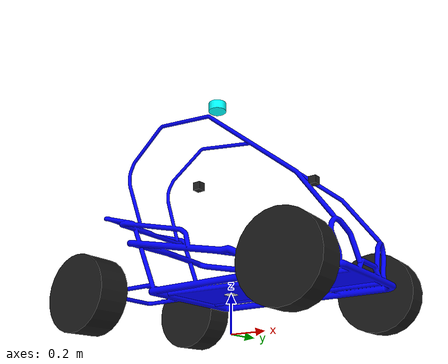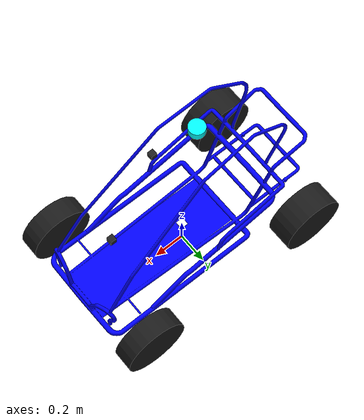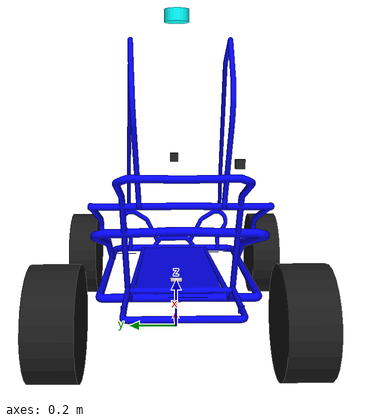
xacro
<?xml version="1.0"?>

<robot name="my_robot" xmlns:xacro="http://www.ros.org/wiki/xacro">

  <xacro:include filename="new_car.xacro" />

  <xacro:include filename="ros2_control_ackerman.xacro" />

  <xacro:include filename="lidar.xacro" />

  <xacro:include filename="cameras.xacro" />

  <xacro:include filename="gazebo_control.xacro" />

</robot>

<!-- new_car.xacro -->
<robot name="ackermann_drive" xmlns:xacro="http://ros.org/wiki/xacro">

    <xacro:property name="base_width" value="1.041"/>
    <xacro:property name="base_length" value="1.892"/>
    <xacro:property name="base_height" value="0.626"/>

    <xacro:property name="front_wheel_radius" value="0.2"/>
    <xacro:property name="front_wheel_width" value="0.13"/>
    <xacro:property name="rear_wheel_radius" value="0.2"/>
    <xacro:property name="rear_wheel_width" value="0.17"/>

    <xacro:include filename="inertia_macros.xacro"/>

    <!-- Colors -->
    <material name="White">
        <color rgba="1.0 1.0 1.0 1.0"/>
    </material>
    <material name="Blue">
        <color rgba="0.0 0.0 1.0 1.0"/>
    </material>
    <material name="Gray">
        <color rgba="0.5 0.5 0.5 1.0"/>
    </material>
    <material name="Black">
        <color rgba="0.1 0.1 0.1 1"/>
    </material>
    <material name="Cyan">
        <color rgba="0 1.0 1.0 1.0"/>
    </material>
    <material name="Red">
        <color rgba="1 0 0 1.0"/>
    </material>

    <link name="base_link" />

    <!-- Chassis -->
    <link name="chassis">

        <visual>
        <origin xyz="0 -0.01 0" rpy="0 0 0" />
            <geometry>
                <mesh filename="package://robot_description/description/meshes/new_car_chassis.stl" scale="0.58 0.5 0.58"/>
            </geometry>
            <material name="Blue"/>
        </visual>

        <collision>
        </collision>
        <!-- make box slightly smaller than actual to prevent accidental self collision y=0.92-->
        <xacro:inertia_box mass="150" x="1.65" y="0.92" z="1.13">
            <origin rpy="0 -0.01 0" xyz="0 0 0"/>
        </xacro:inertia_box>
    </link>

    <joint name="chassis_joint" type="fixed">
        <origin xyz="0 0 0.2" rpy="0 0 0" />
        <parent link="base_link" />
        <child link="chassis" />
    </joint>

    <!-- rear left wheel Link -->
    <link name="rear_left_wheel">
        <visual>
            <geometry>
                <cylinder radius="${rear_wheel_radius}" length="${rear_wheel_width}"/>
            </geometry>
            <material name="Black"/>
        </visual>
        <collision>
            <geometry>
                <cylinder radius="${rear_wheel_radius}" length="${rear_wheel_width}"/>
            </geometry>
        </collision>
        <xacro:inertia_cylinder mass="6.8" length="0.17" radius="0.2">
            <origin xyz="-0.6 0.42 0" rpy="-1.57 0 0"/>
        </xacro:inertia_cylinder>
    </link>

    <joint name="rear_left_wheel_joint" type="continuous">
        <origin xyz="-0.6 0.42 0" rpy="-1.57 0 0"/>
        <parent link="chassis" />
        <child link="rear_left_wheel" />
        <axis xyz="0 0 1" />
        <dynamics damping="0.2" />
    </joint>

    <!-- rear right wheel Link -->
    <link name="rear_right_wheel">
        <visual>
            <geometry>
                <cylinder radius="${rear_wheel_radius}" length="${rear_wheel_width}"/>
            </geometry>
            <material name="Black"/>
        </visual>
        <collision>
            <geometry>
                <cylinder radius="${rear_wheel_radius}" length="${rear_wheel_width}"/>
            </geometry>
        </collision>
        <xacro:inertia_cylinder mass="6.8" length="0.17" radius="0.2">
            <origin xyz="-0.6 -0.42 0" rpy="-1.57 0 0" />
        </xacro:inertia_cylinder>
    </link>

    <joint name="rear_right_wheel_joint" type="continuous">
        <origin xyz="-0.6 -0.42 0" rpy="-1.57 0 0" />
        <parent link="chassis" />
        <child link="rear_right_wheel" />
        <axis xyz="0 0 1" />
        <dynamics damping="0.2" />
    </joint>

    <!-- left steer Link -->
    <link name="left_wheel_steering">
        <inertial>
            <mass value="0.1"/>
            <inertia ixx="0" ixy="0.0" ixz="0.0" iyy="0.0" iyz="0.0" izz="0.0" />
        </inertial>
    </link>

    <joint name="left_wheel_steering_joint" type="revolute">
        <origin xyz="0.6 0.45 0" rpy="1.57 0 0"/>
        <parent link="chassis"/>
        <child link="left_wheel_steering"/>
        <axis xyz="0 1 0"/>
        <dynamics damping="0.2"/>
        <!-- effort = torque (N/m) Lower/upper = steering angle rad-->
        <limit effort="100.0" lower="-0.785" upper="0.785" velocity="30"/>
    </joint>

    <!-- right steer Link -->
    <link name="right_wheel_steering">
        <inertial>
            <mass value="0.1"/>
            <inertia ixx="0" ixy="0.0" ixz="0.0" iyy="0.0" iyz="0.0" izz="0.0" />
        </inertial>
    </link>

    <joint name="right_wheel_steering_joint" type="revolute">
        <origin xyz="0.6 -0.45 0" rpy="1.57 0 0"/>
        <parent link="chassis"/>
        <child link="right_wheel_steering"/>
        <axis xyz="0 1 0"/>
        <dynamics damping="0.2"/>
        <!-- effort = torque (N/m) Lower/upper = steering angle rad-->
        <limit effort="100.0" lower="-0.785" upper="0.785" velocity="30"/>
    </joint>

    <!-- front left wheel Link -->
    <link name="front_left_wheel">
         <visual>
            <geometry>
                <cylinder radius="${front_wheel_radius}" length="${front_wheel_width}"/>
            </geometry>
            <material name="Black"/>
        </visual>
        <collision>
            <geometry>
                <cylinder radius="${front_wheel_radius}" length="${front_wheel_width}"/>
            </geometry>
        </collision>
        <xacro:inertia_cylinder mass="4.5" length="0.13" radius="0.2">
            <origin xyz="0.6 0.45 0" rpy="1.57 0 0"/>
        </xacro:inertia_cylinder>
    </link>

    <joint name="front_left_wheel_joint" type="continuous">
        <origin xyz="0 0 0" rpy="0 0 0" />
        <parent link="left_wheel_steering" />
        <child link="front_left_wheel" />
        <axis xyz="0 0 1" />
        <dynamics damping="0.2" />
    </joint>

    <!-- front right wheel Link -->
    <link name="front_right_wheel">
        <visual>
            <geometry>
                <cylinder radius="${front_wheel_radius}" length="${front_wheel_width}"/>
            </geometry>
            <material name="Black"/>
        </visual>
        <collision>
            <geometry>
                <cylinder radius="${front_wheel_radius}" length="${front_wheel_width}"/>
            </geometry>
        </collision>
        <xacro:inertia_cylinder mass="4.5" length="0.13" radius="0.2">
            <origin xyz="0.6 -0.45 0" rpy="1.57 0 0"/>
        </xacro:inertia_cylinder>
    </link>

    <joint name="front_right_wheel_joint" type="continuous">
        <origin xyz="0 0 0" rpy="0 0 0" />
        <parent link="right_wheel_steering" />
        <child link="front_right_wheel" />
        <axis xyz="0 0 1" />
        <dynamics damping="0.2" />
    </joint>

    <!-- IMU -->
    <joint name="imu_joint" type="fixed">
        <origin xyz="0 0 0" rpy="0 0 0" />
        <parent link="chassis" />
        <child link="imu_link" />
    </joint>
    <link name="imu_link">
        <pose>0 0 0 0 0 0</pose>  <!-- Adjust height based on your vehicle -->
        <visual>
            <geometry>
                <box size ="0.05 0.05 0.01"/>
            </geometry>
            <material name ="White"/>
        </visual>
    </link>
</robot>

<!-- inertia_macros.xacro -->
<robot xmlns:xacro="http://www.ros.org/wiki/xacro" >

    <!-- Specify some standard inertial calculations https://en.wikipedia.org/wiki/List_of_moments_of_inertia -->
    <!-- These make use of xacro's mathematical functionality -->

  <xacro:macro name="inertia_sphere" params="mass radius *origin">
      <inertial>
          <xacro:insert_block name="origin"/>
          <mass value="${mass}" />
          <inertia ixx="${(2/5) * mass * (radius*radius)}" ixy="0.0" ixz="0.0"
                  iyy="${(2/5) * mass * (radius*radius)}" iyz="0.0"
                  izz="${(2/5) * mass * (radius*radius)}" />
      </inertial>
  </xacro:macro>

  <xacro:macro name="inertia_box" params="mass x y z *origin">
      <inertial>
          <xacro:insert_block name="origin"/>
          <mass value="${mass}" />
          <inertia ixx="${(1/12) * mass * (y*y+z*z)}" ixy="0.0" ixz="0.0"
                  iyy="${(1/12) * mass * (x*x+z*z)}" iyz="0.0"
                  izz="${(1/12) * mass * (x*x+y*y)}" />
      </inertial>
  </xacro:macro>

  <xacro:macro name="inertia_cylinder" params="mass length radius *origin">
      <inertial>
          <xacro:insert_block name="origin"/>
          <mass value="${mass}" />
          <inertia ixx="${(1/12) * mass * (3*radius*radius + length*length)}" ixy="0.0" ixz="0.0"
                  iyy="${(1/12) * mass * (3*radius*radius + length*length)}" iyz="0.0"
                  izz="${(1/2) * mass * (radius*radius)}" />
      </inertial>
  </xacro:macro>

  <xacro:macro name="box_inertia" params="m w h d">
    <inertial>
      <origin xyz="0 0 0" rpy="${pi/2} 0 ${pi/2}"/>
      <mass value="${m}"/>
      <inertia ixx="${(m/12) * (h*h + d*d)}" ixy="0.0" ixz="0.0" iyy="${(m/12) * (w*w + d*d)}" iyz="0.0" izz="${(m/12) * (w*w + h*h)}"/>
    </inertial>
  </xacro:macro>

  <xacro:macro name="cylinder_inertia" params="m r h">
    <inertial>
      <origin xyz="0 0 0" rpy="${pi/2} 0 0" />
      <mass value="${m}"/>
      <inertia ixx="${(m/12) * (3*r*r + h*h)}" ixy = "0" ixz = "0" iyy="${(m/12) * (3*r*r + h*h)}" iyz = "0" izz="${(m/2) * (r*r)}"/>
    </inertial>
  </xacro:macro>
</robot>

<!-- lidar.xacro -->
<robot xmlns:xacro="http://www.ros.org/wiki/xacro" >
    <!-- Lidar's urdf-->
    <joint name="laser_joint" type="fixed">
        <parent link="chassis"/>
        <child link="laser_frame"/>
        <origin xyz="-0.1 0 1.1" rpy="0 0 0"/>
    </joint>
    <link name="laser_frame">
        <visual>
            <geometry>
                <cylinder radius="0.05" length="0.05"/>
            </geometry>
            <material name="Cyan">
                <color rgba="0 1.0 1.0 1.0"/>
            </material>
        </visual>
        <collision>
            <geometry>
                <cylinder radius="0.05" length="0.05"/>
            </geometry>
        </collision>
        <xacro:inertia_cylinder mass="0.1" length="0.05" radius="0.05">
            <origin xyz="0 0 0" rpy="0 0 0"/>
        </xacro:inertia_cylinder>
    </link>

    <!-- 3D Lidar New Gazebo Sensor Plugin  -->
    <gazebo reference="laser_frame">
        <sensor name="laser" type="gpu_lidar">
            <pose> 0 0 0 0 0 0 </pose>
            <always_on>true</always_on>
            <visualize>true</visualize>
            <update_rate>10</update_rate>
            <topic>cloud</topic>
            <gz_frame_id>laser_frame</gz_frame_id>
            <lidar>
                <scan>
                    <horizontal>
                        <samples>200</samples>
                        <min_angle>-3.14</min_angle>
                        <max_angle>3.14</max_angle>
                    </horizontal>
                    <vertical>
                        <samples>15</samples>
                        <min_angle>-0.26</min_angle>
                        <max_angle>0.26</max_angle>
                    </vertical>
                </scan>
                <range>
                    <min>0.3</min>
                    <max>12</max>
                </range>
            </lidar>
        </sensor>
    </gazebo>

</robot>

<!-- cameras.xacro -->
<robot xmlns:xacro="http://www.ros.org/wiki/xacro">
    <!-- Depth camera's urdf -->
    <joint name="camera_joint" type="fixed">
        <parent link="chassis"/>
        <child link="camera_link"/>
        <origin xyz="0 0 0.5" rpy="0 0 0"/>
    </joint>
    <link name="camera_link"></link>

    <!-- Front camera Optical link -->
    <joint name="front_camera_joint" type="fixed">
        <parent link="camera_link"/>
        <child link="front_camera"/>
        <origin xyz="0.5 0 0" rpy="0 0 0"/>
    </joint>
    <link name="front_camera">
        <visual>
            <geometry>
                <box size="0.04 0.04 0.04"/>
            </geometry>
            <material name="black"/>
        </visual>
    </link>
    <!-- Front camera Gazebo Sensor Plugin -->
    <gazebo reference="front_camera">
        <material>Gazebo/Black</material>

        <sensor name="rgbd_camera1" type="rgbd_camera">
            <pose> 0 0 0 0 0 0 </pose>
            <always_on>true</always_on>
            <visualize>true</visualize>
            <update_rate>30</update_rate>
            <topic>camera1</topic>
            <gz_frame_id>camera_link</gz_frame_id>
            <camera>
                <optical_frame_id>front_camera</optical_frame_id>
                <camera_info_topic>camera/camera_info</camera_info_topic>
                <horizontal_fov>1.52</horizontal_fov>
                <image>
                    <format>R8G8B8</format>
                    <width>320</width>
                    <height>240</height>
                </image>
                <clip>
                    <near>0.05</near>
                    <far>6.0</far>
                </clip>
            </camera>
        </sensor>
    </gazebo>

       <!-- Right camera Optical link -->
    <joint name="right_camera_joint" type="fixed">
        <parent link="camera_link"/>
        <child link="right_camera"/>
        <origin xyz="0 -0.27 0" rpy="0 0 -1.57"/>
    </joint>
    <link name="right_camera">
        <visual>
            <geometry>
                <box size="0.04 0.04 0.04"/>
            </geometry>
            <material name="black"/>
        </visual>
    </link>
    <!-- Right camera Gazebo Sensor Plugin -->
    <gazebo reference="right_camera">
        <material>Gazebo/Black</material>

        <sensor name="rgbd_camera2" type="rgbd_camera">
            <pose> 0 0 0 0 0 0 </pose>
            <always_on>true</always_on>
            <visualize>true</visualize>
            <update_rate>30</update_rate>
            <topic>camera2</topic>
            <gz_frame_id>camera_link</gz_frame_id>
            <camera>
                <optical_frame_id>right_camera</optical_frame_id>
                <camera_info_topic>camera/camera_info</camera_info_topic>
                <horizontal_fov>1.52</horizontal_fov>
                <image>
                    <format>R8G8B8</format>
                    <width>320</width>
                    <height>240</height>
                </image>
                <clip>
                    <near>0.05</near>
                    <far>6.0</far>
                </clip>
            </camera>
        </sensor>
    </gazebo>
</robot>
